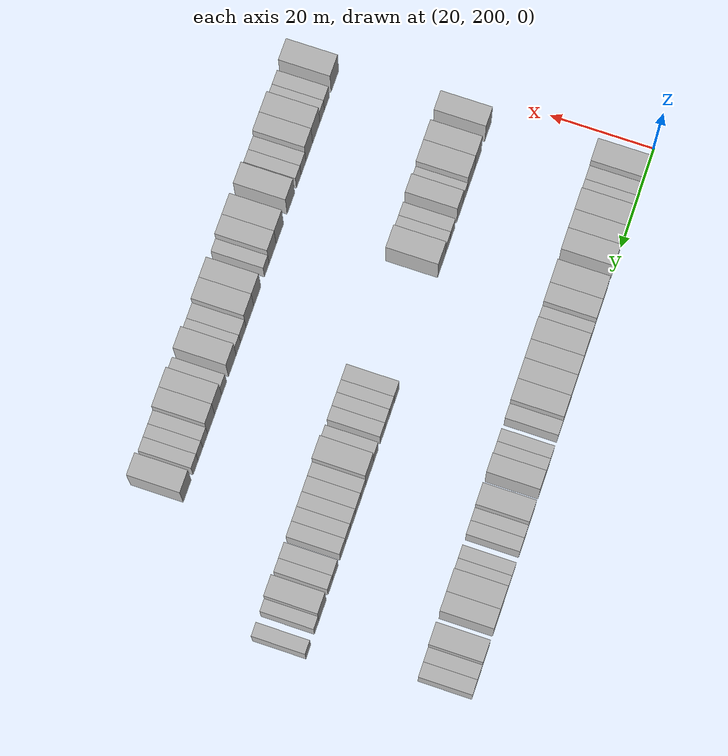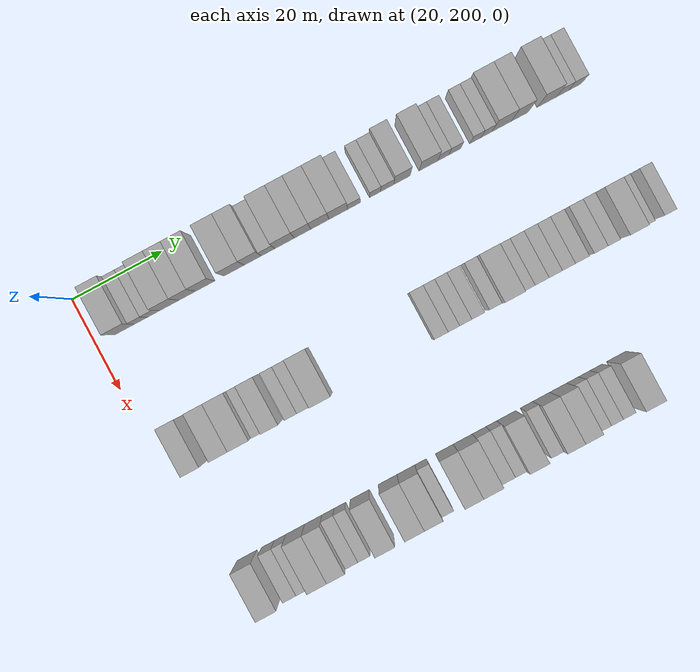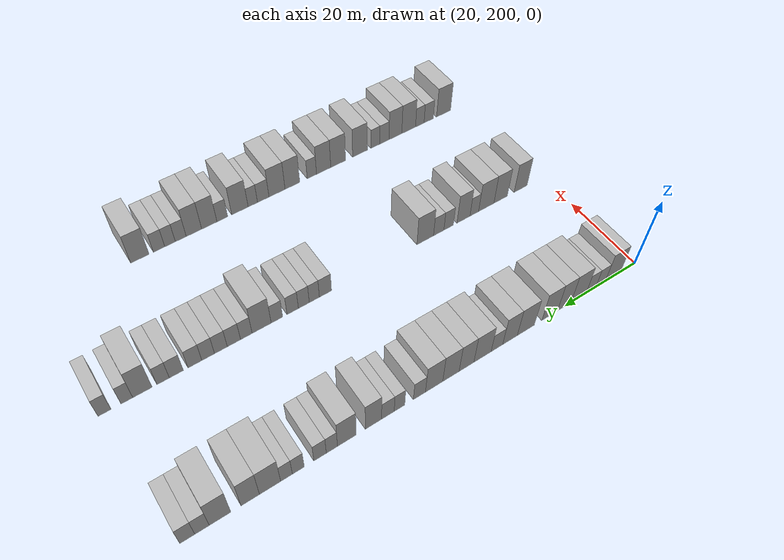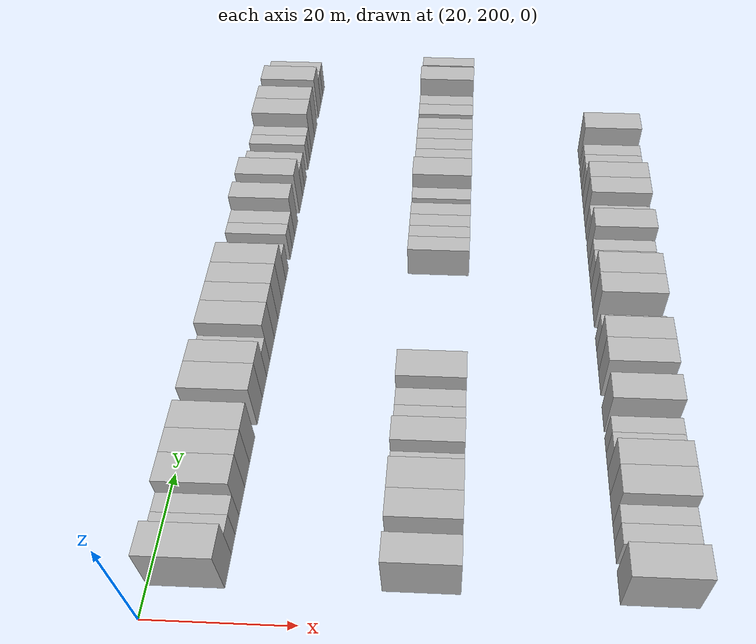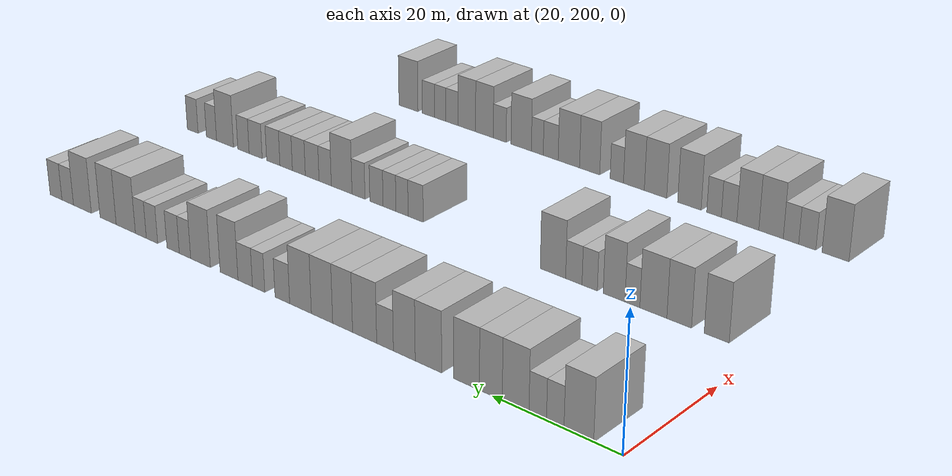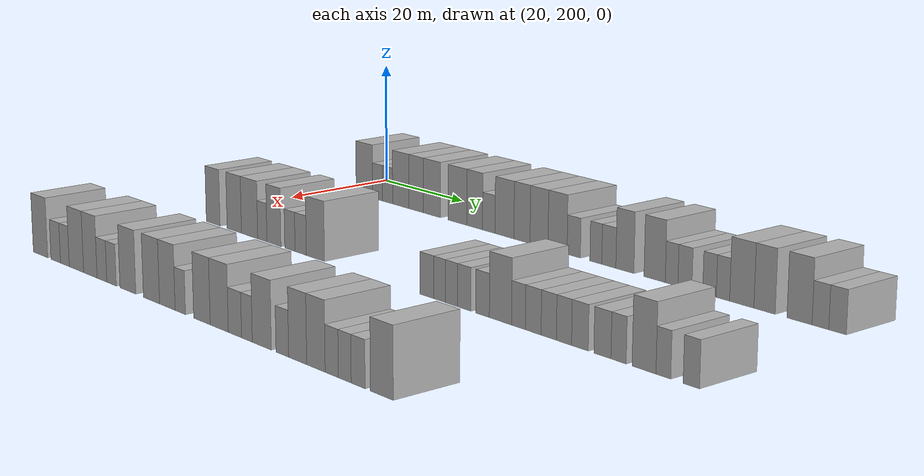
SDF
<sdf version="1.6">
 <world name="default">
  <model name="building_169">
   <static>1</static>
   <pose>25.0000 206.5471 0 0.000000 0.000000 0.000000</pose>
   <link name="link">
    <pose>0 0 4.50 0 0 0</pose>
    <collision name="collision"><geometry><box><size>10.0000 4.4687 9.0000</size></box></geometry></collision>
    <visual name="visual">
     <cast_shadows>0</cast_shadows>
     <geometry><box><size>10.0000 4.4687 9.0000</size></box></geometry>
     <material>
      <script>
       <uri>model://HANNAS_wall/materials/scripts</uri>
       <uri>model://HANNAS_wall/materials/textures</uri>
       <name>vrc/HANNAS_wall</name>
      </script>
     </material>
    </visual>
   </link>
  </model>
  <model name="building_170">
   <static>1</static>
   <pose>25.0000 210.1211 0 0.000000 0.000000 0.000000</pose>
   <link name="link">
    <pose>0 0 3.00 0 0 0</pose>
    <collision name="collision"><geometry><box><size>10.0000 2.6792 6.0000</size></box></geometry></collision>
    <visual name="visual">
     <cast_shadows>0</cast_shadows>
     <geometry><box><size>10.0000 2.6792 6.0000</size></box></geometry>
     <material>
      <script>
       <uri>model://HANNAS_wall/materials/scripts</uri>
       <uri>model://HANNAS_wall/materials/textures</uri>
       <name>vrc/HANNAS_wall</name>
      </script>
     </material>
    </visual>
   </link>
  </model>
  <model name="building_171">
   <static>1</static>
   <pose>25.0000 212.8193 0 0.000000 0.000000 0.000000</pose>
   <link name="link">
    <pose>0 0 3.00 0 0 0</pose>
    <collision name="collision"><geometry><box><size>10.0000 2.7171 6.0000</size></box></geometry></collision>
    <visual name="visual">
     <cast_shadows>0</cast_shadows>
     <geometry><box><size>10.0000 2.7171 6.0000</size></box></geometry>
     <material>
      <script>
       <uri>model://HANNAS_wall/materials/scripts</uri>
       <uri>model://HANNAS_wall/materials/textures</uri>
       <name>vrc/HANNAS_wall</name>
      </script>
     </material>
    </visual>
   </link>
  </model>
  <model name="building_172">
   <static>1</static>
   <pose>25.0000 216.2912 0 0.000000 0.000000 0.000000</pose>
   <link name="link">
    <pose>0 0 4.50 0 0 0</pose>
    <collision name="collision"><geometry><box><size>10.0000 4.2267 9.0000</size></box></geometry></collision>
    <visual name="visual">
     <cast_shadows>0</cast_shadows>
     <geometry><box><size>10.0000 4.2267 9.0000</size></box></geometry>
     <material>
      <script>
       <uri>model://HANNAS_wall/materials/scripts</uri>
       <uri>model://HANNAS_wall/materials/textures</uri>
       <name>vrc/HANNAS_wall</name>
      </script>
     </material>
    </visual>
   </link>
  </model>
  <model name="building_173">
   <static>1</static>
   <pose>25.0000 220.2490 0 0.000000 0.000000 0.000000</pose>
   <link name="link">
    <pose>0 0 4.50 0 0 0</pose>
    <collision name="collision"><geometry><box><size>10.0000 3.6890 9.0000</size></box></geometry></collision>
    <visual name="visual">
     <cast_shadows>0</cast_shadows>
     <geometry><box><size>10.0000 3.6890 9.0000</size></box></geometry>
     <material>
      <script>
       <uri>model://HANNAS_wall/materials/scripts</uri>
       <uri>model://HANNAS_wall/materials/textures</uri>
       <name>vrc/HANNAS_wall</name>
      </script>
     </material>
    </visual>
   </link>
  </model>
  <model name="building_174">
   <static>1</static>
   <pose>25.0000 224.2156 0 0.000000 0.000000 0.000000</pose>
   <link name="link">
    <pose>0 0 4.50 0 0 0</pose>
    <collision name="collision"><geometry><box><size>10.0000 4.2442 9.0000</size></box></geometry></collision>
    <visual name="visual">
     <cast_shadows>0</cast_shadows>
     <geometry><box><size>10.0000 4.2442 9.0000</size></box></geometry>
     <material>
      <script>
       <uri>model://HANNAS_wall/materials/scripts</uri>
       <uri>model://HANNAS_wall/materials/textures</uri>
       <name>vrc/HANNAS_wall</name>
      </script>
     </material>
    </visual>
   </link>
  </model>
  <model name="building_175">
   <static>1</static>
   <pose>25.0000 230.5868 0 0.000000 0.000000 0.000000</pose>
   <link name="link">
    <pose>0 0 4.50 0 0 0</pose>
    <collision name="collision"><geometry><box><size>10.0000 4.4983 9.0000</size></box></geometry></collision>
    <visual name="visual">
     <cast_shadows>0</cast_shadows>
     <geometry><box><size>10.0000 4.4983 9.0000</size></box></geometry>
     <material>
      <script>
       <uri>model://HANNAS_wall/materials/scripts</uri>
       <uri>model://HANNAS_wall/materials/textures</uri>
       <name>vrc/HANNAS_wall</name>
      </script>
     </material>
    </visual>
   </link>
  </model>
  <model name="building_176">
   <static>1</static>
   <pose>25.0000 234.7298 0 0.000000 0.000000 0.000000</pose>
   <link name="link">
    <pose>0 0 4.50 0 0 0</pose>
    <collision name="collision"><geometry><box><size>10.0000 3.7878 9.0000</size></box></geometry></collision>
    <visual name="visual">
     <cast_shadows>0</cast_shadows>
     <geometry><box><size>10.0000 3.7878 9.0000</size></box></geometry>
     <material>
      <script>
       <uri>model://HANNAS_wall/materials/scripts</uri>
       <uri>model://HANNAS_wall/materials/textures</uri>
       <name>vrc/HANNAS_wall</name>
      </script>
     </material>
    </visual>
   </link>
  </model>
  <model name="building_177">
   <static>1</static>
   <pose>25.0000 238.0966 0 0.000000 0.000000 0.000000</pose>
   <link name="link">
    <pose>0 0 3.00 0 0 0</pose>
    <collision name="collision"><geometry><box><size>10.0000 2.9459 6.0000</size></box></geometry></collision>
    <visual name="visual">
     <cast_shadows>0</cast_shadows>
     <geometry><box><size>10.0000 2.9459 6.0000</size></box></geometry>
     <material>
      <script>
       <uri>model://HANNAS_wall/materials/scripts</uri>
       <uri>model://HANNAS_wall/materials/textures</uri>
       <name>vrc/HANNAS_wall</name>
      </script>
     </material>
    </visual>
   </link>
  </model>
  <model name="building_178">
   <static>1</static>
   <pose>25.0000 241.7360 0 0.000000 0.000000 0.000000</pose>
   <link name="link">
    <pose>0 0 4.50 0 0 0</pose>
    <collision name="collision"><geometry><box><size>10.0000 4.3329 9.0000</size></box></geometry></collision>
    <visual name="visual">
     <cast_shadows>0</cast_shadows>
     <geometry><box><size>10.0000 4.3329 9.0000</size></box></geometry>
     <material>
      <script>
       <uri>model://HANNAS_wall/materials/scripts</uri>
       <uri>model://HANNAS_wall/materials/textures</uri>
       <name>vrc/HANNAS_wall</name>
      </script>
     </material>
    </visual>
   </link>
  </model>
  <model name="building_179">
   <static>1</static>
   <pose>25.0000 245.7249 0 0.000000 0.000000 0.000000</pose>
   <link name="link">
    <pose>0 0 4.50 0 0 0</pose>
    <collision name="collision"><geometry><box><size>10.0000 3.6449 9.0000</size></box></geometry></collision>
    <visual name="visual">
     <cast_shadows>0</cast_shadows>
     <geometry><box><size>10.0000 3.6449 9.0000</size></box></geometry>
     <material>
      <script>
       <uri>model://HANNAS_wall/materials/scripts</uri>
       <uri>model://HANNAS_wall/materials/textures</uri>
       <name>vrc/HANNAS_wall</name>
      </script>
     </material>
    </visual>
   </link>
  </model>
  <model name="building_180">
   <static>1</static>
   <pose>25.0000 249.5362 0 0.000000 0.000000 0.000000</pose>
   <link name="link">
    <pose>0 0 4.50 0 0 0</pose>
    <collision name="collision"><geometry><box><size>10.0000 3.9777 9.0000</size></box></geometry></collision>
    <visual name="visual">
     <cast_shadows>0</cast_shadows>
     <geometry><box><size>10.0000 3.9777 9.0000</size></box></geometry>
     <material>
      <script>
       <uri>model://HANNAS_wall/materials/scripts</uri>
       <uri>model://HANNAS_wall/materials/textures</uri>
       <name>vrc/HANNAS_wall</name>
      </script>
     </material>
    </visual>
   </link>
  </model>
  <model name="building_181">
   <static>1</static>
   <pose>25.0000 253.5884 0 0.000000 0.000000 0.000000</pose>
   <link name="link">
    <pose>0 0 4.50 0 0 0</pose>
    <collision name="collision"><geometry><box><size>10.0000 4.1267 9.0000</size></box></geometry></collision>
    <visual name="visual">
     <cast_shadows>0</cast_shadows>
     <geometry><box><size>10.0000 4.1267 9.0000</size></box></geometry>
     <material>
      <script>
       <uri>model://HANNAS_wall/materials/scripts</uri>
       <uri>model://HANNAS_wall/materials/textures</uri>
       <name>vrc/HANNAS_wall</name>
      </script>
     </material>
    </visual>
   </link>
  </model>
  <model name="building_182">
   <static>1</static>
   <pose>25.0000 257.0678 0 0.000000 0.000000 0.000000</pose>
   <link name="link">
    <pose>0 0 3.00 0 0 0</pose>
    <collision name="collision"><geometry><box><size>10.0000 2.8320 6.0000</size></box></geometry></collision>
    <visual name="visual">
     <cast_shadows>0</cast_shadows>
     <geometry><box><size>10.0000 2.8320 6.0000</size></box></geometry>
     <material>
      <script>
       <uri>model://HANNAS_wall/materials/scripts</uri>
       <uri>model://HANNAS_wall/materials/textures</uri>
       <name>vrc/HANNAS_wall</name>
      </script>
     </material>
    </visual>
   </link>
  </model>
  <model name="building_183">
   <static>1</static>
   <pose>25.0000 261.7066 0 0.000000 0.000000 0.000000</pose>
   <link name="link">
    <pose>0 0 3.00 0 0 0</pose>
    <collision name="collision"><geometry><box><size>10.0000 2.4457 6.0000</size></box></geometry></collision>
    <visual name="visual">
     <cast_shadows>0</cast_shadows>
     <geometry><box><size>10.0000 2.4457 6.0000</size></box></geometry>
     <material>
      <script>
       <uri>model://HANNAS_wall/materials/scripts</uri>
       <uri>model://HANNAS_wall/materials/textures</uri>
       <name>vrc/HANNAS_wall</name>
      </script>
     </material>
    </visual>
   </link>
  </model>
  <model name="building_184">
   <static>1</static>
   <pose>25.0000 264.3765 0 0.000000 0.000000 0.000000</pose>
   <link name="link">
    <pose>0 0 3.00 0 0 0</pose>
    <collision name="collision"><geometry><box><size>10.0000 2.8942 6.0000</size></box></geometry></collision>
    <visual name="visual">
     <cast_shadows>0</cast_shadows>
     <geometry><box><size>10.0000 2.8942 6.0000</size></box></geometry>
     <material>
      <script>
       <uri>model://HANNAS_wall/materials/scripts</uri>
       <uri>model://HANNAS_wall/materials/textures</uri>
       <name>vrc/HANNAS_wall</name>
      </script>
     </material>
    </visual>
   </link>
  </model>
  <model name="building_185">
   <static>1</static>
   <pose>25.0000 267.6362 0 0.000000 0.000000 0.000000</pose>
   <link name="link">
    <pose>0 0 4.50 0 0 0</pose>
    <collision name="collision"><geometry><box><size>10.0000 3.6252 9.0000</size></box></geometry></collision>
    <visual name="visual">
     <cast_shadows>0</cast_shadows>
     <geometry><box><size>10.0000 3.6252 9.0000</size></box></geometry>
     <material>
      <script>
       <uri>model://HANNAS_wall/materials/scripts</uri>
       <uri>model://HANNAS_wall/materials/textures</uri>
       <name>vrc/HANNAS_wall</name>
      </script>
     </material>
    </visual>
   </link>
  </model>
  <model name="building_186">
   <static>1</static>
   <pose>25.0000 273.5083 0 0.000000 0.000000 0.000000</pose>
   <link name="link">
    <pose>0 0 4.50 0 0 0</pose>
    <collision name="collision"><geometry><box><size>10.0000 4.1190 9.0000</size></box></geometry></collision>
    <visual name="visual">
     <cast_shadows>0</cast_shadows>
     <geometry><box><size>10.0000 4.1190 9.0000</size></box></geometry>
     <material>
      <script>
       <uri>model://HANNAS_wall/materials/scripts</uri>
       <uri>model://HANNAS_wall/materials/textures</uri>
       <name>vrc/HANNAS_wall</name>
      </script>
     </material>
    </visual>
   </link>
  </model>
  <model name="building_187">
   <static>1</static>
   <pose>25.0000 276.7757 0 0.000000 0.000000 0.000000</pose>
   <link name="link">
    <pose>0 0 3.00 0 0 0</pose>
    <collision name="collision"><geometry><box><size>10.0000 2.4158 6.0000</size></box></geometry></collision>
    <visual name="visual">
     <cast_shadows>0</cast_shadows>
     <geometry><box><size>10.0000 2.4158 6.0000</size></box></geometry>
     <material>
      <script>
       <uri>model://HANNAS_wall/materials/scripts</uri>
       <uri>model://HANNAS_wall/materials/textures</uri>
       <name>vrc/HANNAS_wall</name>
      </script>
     </material>
    </visual>
   </link>
  </model>
  <model name="building_188">
   <static>1</static>
   <pose>25.0000 279.3054 0 0.000000 0.000000 0.000000</pose>
   <link name="link">
    <pose>0 0 3.00 0 0 0</pose>
    <collision name="collision"><geometry><box><size>10.0000 2.6436 6.0000</size></box></geometry></collision>
    <visual name="visual">
     <cast_shadows>0</cast_shadows>
     <geometry><box><size>10.0000 2.6436 6.0000</size></box></geometry>
     <material>
      <script>
       <uri>model://HANNAS_wall/materials/scripts</uri>
       <uri>model://HANNAS_wall/materials/textures</uri>
       <name>vrc/HANNAS_wall</name>
      </script>
     </material>
    </visual>
   </link>
  </model>
  <model name="building_189">
   <static>1</static>
   <pose>25.0000 283.8724 0 0.000000 0.000000 0.000000</pose>
   <link name="link">
    <pose>0 0 3.00 0 0 0</pose>
    <collision name="collision"><geometry><box><size>10.0000 2.4904 6.0000</size></box></geometry></collision>
    <visual name="visual">
     <cast_shadows>0</cast_shadows>
     <geometry><box><size>10.0000 2.4904 6.0000</size></box></geometry>
     <material>
      <script>
       <uri>model://HANNAS_wall/materials/scripts</uri>
       <uri>model://HANNAS_wall/materials/textures</uri>
       <name>vrc/HANNAS_wall</name>
      </script>
     </material>
    </visual>
   </link>
  </model>
  <model name="building_190">
   <static>1</static>
   <pose>25.0000 286.3260 0 0.000000 0.000000 0.000000</pose>
   <link name="link">
    <pose>0 0 3.00 0 0 0</pose>
    <collision name="collision"><geometry><box><size>10.0000 2.4168 6.0000</size></box></geometry></collision>
    <visual name="visual">
     <cast_shadows>0</cast_shadows>
     <geometry><box><size>10.0000 2.4168 6.0000</size></box></geometry>
     <material>
      <script>
       <uri>model://HANNAS_wall/materials/scripts</uri>
       <uri>model://HANNAS_wall/materials/textures</uri>
       <name>vrc/HANNAS_wall</name>
      </script>
     </material>
    </visual>
   </link>
  </model>
  <model name="building_191">
   <static>1</static>
   <pose>25.0000 289.6887 0 0.000000 0.000000 0.000000</pose>
   <link name="link">
    <pose>0 0 4.50 0 0 0</pose>
    <collision name="collision"><geometry><box><size>10.0000 4.3086 9.0000</size></box></geometry></collision>
    <visual name="visual">
     <cast_shadows>0</cast_shadows>
     <geometry><box><size>10.0000 4.3086 9.0000</size></box></geometry>
     <material>
      <script>
       <uri>model://HANNAS_wall/materials/scripts</uri>
       <uri>model://HANNAS_wall/materials/textures</uri>
       <name>vrc/HANNAS_wall</name>
      </script>
     </material>
    </visual>
   </link>
  </model>
  <model name="building_192">
   <static>1</static>
   <pose>25.0000 293.6842 0 0.000000 0.000000 0.000000</pose>
   <link name="link">
    <pose>0 0 4.50 0 0 0</pose>
    <collision name="collision"><geometry><box><size>10.0000 3.6823 9.0000</size></box></geometry></collision>
    <visual name="visual">
     <cast_shadows>0</cast_shadows>
     <geometry><box><size>10.0000 3.6823 9.0000</size></box></geometry>
     <material>
      <script>
       <uri>model://HANNAS_wall/materials/scripts</uri>
       <uri>model://HANNAS_wall/materials/textures</uri>
       <name>vrc/HANNAS_wall</name>
      </script>
     </material>
    </visual>
   </link>
  </model>
  <model name="building_193">
   <static>1</static>
   <pose>25.0000 299.6206 0 0.000000 0.000000 0.000000</pose>
   <link name="link">
    <pose>0 0 4.50 0 0 0</pose>
    <collision name="collision"><geometry><box><size>10.0000 4.1906 9.0000</size></box></geometry></collision>
    <visual name="visual">
     <cast_shadows>0</cast_shadows>
     <geometry><box><size>10.0000 4.1906 9.0000</size></box></geometry>
     <material>
      <script>
       <uri>model://HANNAS_wall/materials/scripts</uri>
       <uri>model://HANNAS_wall/materials/textures</uri>
       <name>vrc/HANNAS_wall</name>
      </script>
     </material>
    </visual>
   </link>
  </model>
  <model name="building_194">
   <static>1</static>
   <pose>25.0000 303.0851 0 0.000000 0.000000 0.000000</pose>
   <link name="link">
    <pose>0 0 3.00 0 0 0</pose>
    <collision name="collision"><geometry><box><size>10.0000 2.7383 6.0000</size></box></geometry></collision>
    <visual name="visual">
     <cast_shadows>0</cast_shadows>
     <geometry><box><size>10.0000 2.7383 6.0000</size></box></geometry>
     <material>
      <script>
       <uri>model://HANNAS_wall/materials/scripts</uri>
       <uri>model://HANNAS_wall/materials/textures</uri>
       <name>vrc/HANNAS_wall</name>
      </script>
     </material>
    </visual>
   </link>
  </model>
  <model name="building_195">
   <static>1</static>
   <pose>25.0000 305.8695 0 0.000000 0.000000 0.000000</pose>
   <link name="link">
    <pose>0 0 3.00 0 0 0</pose>
    <collision name="collision"><geometry><box><size>10.0000 2.8307 6.0000</size></box></geometry></collision>
    <visual name="visual">
     <cast_shadows>0</cast_shadows>
     <geometry><box><size>10.0000 2.8307 6.0000</size></box></geometry>
     <material>
      <script>
       <uri>model://HANNAS_wall/materials/scripts</uri>
       <uri>model://HANNAS_wall/materials/textures</uri>
       <name>vrc/HANNAS_wall</name>
      </script>
     </material>
    </visual>
   </link>
  </model>
  <model name="building_391">
   <static>1</static>
   <pose>55.0000 206.7245 0 0.000000 0.000000 0.000000</pose>
   <link name="link">
    <pose>0 0 4.50 0 0 0</pose>
    <collision name="collision"><geometry><box><size>10.0000 3.8951 9.0000</size></box></geometry></collision>
    <visual name="visual">
     <cast_shadows>0</cast_shadows>
     <geometry><box><size>10.0000 3.8951 9.0000</size></box></geometry>
     <material>
      <script>
       <uri>model://HANNAS_wall/materials/scripts</uri>
       <uri>model://HANNAS_wall/materials/textures</uri>
       <name>vrc/HANNAS_wall</name>
      </script>
     </material>
    </visual>
   </link>
  </model>
  <model name="building_392">
   <static>1</static>
   <pose>55.0000 212.6493 0 0.000000 0.000000 0.000000</pose>
   <link name="link">
    <pose>0 0 4.50 0 0 0</pose>
    <collision name="collision"><geometry><box><size>10.0000 3.9546 9.0000</size></box></geometry></collision>
    <visual name="visual">
     <cast_shadows>0</cast_shadows>
     <geometry><box><size>10.0000 3.9546 9.0000</size></box></geometry>
     <material>
      <script>
       <uri>model://HANNAS_wall/materials/scripts</uri>
       <uri>model://HANNAS_wall/materials/textures</uri>
       <name>vrc/HANNAS_wall</name>
      </script>
     </material>
    </visual>
   </link>
  </model>
  <model name="building_393">
   <static>1</static>
   <pose>55.0000 216.8332 0 0.000000 0.000000 0.000000</pose>
   <link name="link">
    <pose>0 0 4.50 0 0 0</pose>
    <collision name="collision"><geometry><box><size>10.0000 4.4131 9.0000</size></box></geometry></collision>
    <visual name="visual">
     <cast_shadows>0</cast_shadows>
     <geometry><box><size>10.0000 4.4131 9.0000</size></box></geometry>
     <material>
      <script>
       <uri>model://HANNAS_wall/materials/scripts</uri>
       <uri>model://HANNAS_wall/materials/textures</uri>
       <name>vrc/HANNAS_wall</name>
      </script>
     </material>
    </visual>
   </link>
  </model>
  <model name="building_394">
   <static>1</static>
   <pose>55.0000 220.2704 0 0.000000 0.000000 0.000000</pose>
   <link name="link">
    <pose>0 0 3.00 0 0 0</pose>
    <collision name="collision"><geometry><box><size>10.0000 2.4612 6.0000</size></box></geometry></collision>
    <visual name="visual">
     <cast_shadows>0</cast_shadows>
     <geometry><box><size>10.0000 2.4612 6.0000</size></box></geometry>
     <material>
      <script>
       <uri>model://HANNAS_wall/materials/scripts</uri>
       <uri>model://HANNAS_wall/materials/textures</uri>
       <name>vrc/HANNAS_wall</name>
      </script>
     </material>
    </visual>
   </link>
  </model>
  <model name="building_395">
   <static>1</static>
   <pose>55.0000 223.3398 0 0.000000 0.000000 0.000000</pose>
   <link name="link">
    <pose>0 0 4.50 0 0 0</pose>
    <collision name="collision"><geometry><box><size>10.0000 3.6777 9.0000</size></box></geometry></collision>
    <visual name="visual">
     <cast_shadows>0</cast_shadows>
     <geometry><box><size>10.0000 3.6777 9.0000</size></box></geometry>
     <material>
      <script>
       <uri>model://HANNAS_wall/materials/scripts</uri>
       <uri>model://HANNAS_wall/materials/textures</uri>
       <name>vrc/HANNAS_wall</name>
      </script>
     </material>
    </visual>
   </link>
  </model>
  <model name="building_396">
   <static>1</static>
   <pose>55.0000 227.4953 0 0.000000 0.000000 0.000000</pose>
   <link name="link">
    <pose>0 0 3.00 0 0 0</pose>
    <collision name="collision"><geometry><box><size>10.0000 2.6333 6.0000</size></box></geometry></collision>
    <visual name="visual">
     <cast_shadows>0</cast_shadows>
     <geometry><box><size>10.0000 2.6333 6.0000</size></box></geometry>
     <material>
      <script>
       <uri>model://HANNAS_wall/materials/scripts</uri>
       <uri>model://HANNAS_wall/materials/textures</uri>
       <name>vrc/HANNAS_wall</name>
      </script>
     </material>
    </visual>
   </link>
  </model>
  <model name="building_397">
   <static>1</static>
   <pose>55.0000 230.2359 0 0.000000 0.000000 0.000000</pose>
   <link name="link">
    <pose>0 0 3.00 0 0 0</pose>
    <collision name="collision"><geometry><box><size>10.0000 2.8478 6.0000</size></box></geometry></collision>
    <visual name="visual">
     <cast_shadows>0</cast_shadows>
     <geometry><box><size>10.0000 2.8478 6.0000</size></box></geometry>
     <material>
      <script>
       <uri>model://HANNAS_wall/materials/scripts</uri>
       <uri>model://HANNAS_wall/materials/textures</uri>
       <name>vrc/HANNAS_wall</name>
      </script>
     </material>
    </visual>
   </link>
  </model>
  <model name="building_398">
   <static>1</static>
   <pose>55.0000 233.9056 0 0.000000 0.000000 0.000000</pose>
   <link name="link">
    <pose>0 0 4.50 0 0 0</pose>
    <collision name="collision"><geometry><box><size>10.0000 4.4918 9.0000</size></box></geometry></collision>
    <visual name="visual">
     <cast_shadows>0</cast_shadows>
     <geometry><box><size>10.0000 4.4918 9.0000</size></box></geometry>
     <material>
      <script>
       <uri>model://HANNAS_wall/materials/scripts</uri>
       <uri>model://HANNAS_wall/materials/textures</uri>
       <name>vrc/HANNAS_wall</name>
      </script>
     </material>
    </visual>
   </link>
  </model>
  <model name="building_399">
   <static>1</static>
   <pose>55.0000 259.6286 0 0.000000 0.000000 0.000000</pose>
   <link name="link">
    <pose>0 0 3.00 0 0 0</pose>
    <collision name="collision"><geometry><box><size>10.0000 2.9847 6.0000</size></box></geometry></collision>
    <visual name="visual">
     <cast_shadows>0</cast_shadows>
     <geometry><box><size>10.0000 2.9847 6.0000</size></box></geometry>
     <material>
      <script>
       <uri>model://HANNAS_wall/materials/scripts</uri>
       <uri>model://HANNAS_wall/materials/textures</uri>
       <name>vrc/HANNAS_wall</name>
      </script>
     </material>
    </visual>
   </link>
  </model>
  <model name="building_400">
   <static>1</static>
   <pose>55.0000 262.3425 0 0.000000 0.000000 0.000000</pose>
   <link name="link">
    <pose>0 0 3.00 0 0 0</pose>
    <collision name="collision"><geometry><box><size>10.0000 2.4432 6.0000</size></box></geometry></collision>
    <visual name="visual">
     <cast_shadows>0</cast_shadows>
     <geometry><box><size>10.0000 2.4432 6.0000</size></box></geometry>
     <material>
      <script>
       <uri>model://HANNAS_wall/materials/scripts</uri>
       <uri>model://HANNAS_wall/materials/textures</uri>
       <name>vrc/HANNAS_wall</name>
      </script>
     </material>
    </visual>
   </link>
  </model>
  <model name="building_401">
   <static>1</static>
   <pose>55.0000 264.8702 0 0.000000 0.000000 0.000000</pose>
   <link name="link">
    <pose>0 0 3.00 0 0 0</pose>
    <collision name="collision"><geometry><box><size>10.0000 2.6122 6.0000</size></box></geometry></collision>
    <visual name="visual">
     <cast_shadows>0</cast_shadows>
     <geometry><box><size>10.0000 2.6122 6.0000</size></box></geometry>
     <material>
      <script>
       <uri>model://HANNAS_wall/materials/scripts</uri>
       <uri>model://HANNAS_wall/materials/textures</uri>
       <name>vrc/HANNAS_wall</name>
      </script>
     </material>
    </visual>
   </link>
  </model>
  <model name="building_402">
   <static>1</static>
   <pose>55.0000 267.5347 0 0.000000 0.000000 0.000000</pose>
   <link name="link">
    <pose>0 0 3.00 0 0 0</pose>
    <collision name="collision"><geometry><box><size>10.0000 2.7168 6.0000</size></box></geometry></collision>
    <visual name="visual">
     <cast_shadows>0</cast_shadows>
     <geometry><box><size>10.0000 2.7168 6.0000</size></box></geometry>
     <material>
      <script>
       <uri>model://HANNAS_wall/materials/scripts</uri>
       <uri>model://HANNAS_wall/materials/textures</uri>
       <name>vrc/HANNAS_wall</name>
      </script>
     </material>
    </visual>
   </link>
  </model>
  <model name="building_403">
   <static>1</static>
   <pose>55.0000 271.2460 0 0.000000 0.000000 0.000000</pose>
   <link name="link">
    <pose>0 0 3.00 0 0 0</pose>
    <collision name="collision"><geometry><box><size>10.0000 2.7058 6.0000</size></box></geometry></collision>
    <visual name="visual">
     <cast_shadows>0</cast_shadows>
     <geometry><box><size>10.0000 2.7058 6.0000</size></box></geometry>
     <material>
      <script>
       <uri>model://HANNAS_wall/materials/scripts</uri>
       <uri>model://HANNAS_wall/materials/textures</uri>
       <name>vrc/HANNAS_wall</name>
      </script>
     </material>
    </visual>
   </link>
  </model>
  <model name="building_404">
   <static>1</static>
   <pose>55.0000 274.7921 0 0.000000 0.000000 0.000000</pose>
   <link name="link">
    <pose>0 0 4.50 0 0 0</pose>
    <collision name="collision"><geometry><box><size>10.0000 4.3863 9.0000</size></box></geometry></collision>
    <visual name="visual">
     <cast_shadows>0</cast_shadows>
     <geometry><box><size>10.0000 4.3863 9.0000</size></box></geometry>
     <material>
      <script>
       <uri>model://HANNAS_wall/materials/scripts</uri>
       <uri>model://HANNAS_wall/materials/textures</uri>
       <name>vrc/HANNAS_wall</name>
      </script>
     </material>
    </visual>
   </link>
  </model>
  <model name="building_405">
   <static>1</static>
   <pose>55.0000 278.3083 0 0.000000 0.000000 0.000000</pose>
   <link name="link">
    <pose>0 0 3.00 0 0 0</pose>
    <collision name="collision"><geometry><box><size>10.0000 2.6461 6.0000</size></box></geometry></collision>
    <visual name="visual">
     <cast_shadows>0</cast_shadows>
     <geometry><box><size>10.0000 2.6461 6.0000</size></box></geometry>
     <material>
      <script>
       <uri>model://HANNAS_wall/materials/scripts</uri>
       <uri>model://HANNAS_wall/materials/textures</uri>
       <name>vrc/HANNAS_wall</name>
      </script>
     </material>
    </visual>
   </link>
  </model>
  <model name="building_406">
   <static>1</static>
   <pose>55.0000 281.1202 0 0.000000 0.000000 0.000000</pose>
   <link name="link">
    <pose>0 0 3.00 0 0 0</pose>
    <collision name="collision"><geometry><box><size>10.0000 2.9778 6.0000</size></box></geometry></collision>
    <visual name="visual">
     <cast_shadows>0</cast_shadows>
     <geometry><box><size>10.0000 2.9778 6.0000</size></box></geometry>
     <material>
      <script>
       <uri>model://HANNAS_wall/materials/scripts</uri>
       <uri>model://HANNAS_wall/materials/textures</uri>
       <name>vrc/HANNAS_wall</name>
      </script>
     </material>
    </visual>
   </link>
  </model>
  <model name="building_407">
   <static>1</static>
   <pose>55.0000 284.0295 0 0.000000 0.000000 0.000000</pose>
   <link name="link">
    <pose>0 0 3.00 0 0 0</pose>
    <collision name="collision"><geometry><box><size>10.0000 2.8406 6.0000</size></box></geometry></collision>
    <visual name="visual">
     <cast_shadows>0</cast_shadows>
     <geometry><box><size>10.0000 2.8406 6.0000</size></box></geometry>
     <material>
      <script>
       <uri>model://HANNAS_wall/materials/scripts</uri>
       <uri>model://HANNAS_wall/materials/textures</uri>
       <name>vrc/HANNAS_wall</name>
      </script>
     </material>
    </visual>
   </link>
  </model>
  <model name="building_408">
   <static>1</static>
   <pose>55.0000 286.8389 0 0.000000 0.000000 0.000000</pose>
   <link name="link">
    <pose>0 0 3.00 0 0 0</pose>
    <collision name="collision"><geometry><box><size>10.0000 2.7783 6.0000</size></box></geometry></collision>
    <visual name="visual">
     <cast_shadows>0</cast_shadows>
     <geometry><box><size>10.0000 2.7783 6.0000</size></box></geometry>
     <material>
      <script>
       <uri>model://HANNAS_wall/materials/scripts</uri>
       <uri>model://HANNAS_wall/materials/textures</uri>
       <name>vrc/HANNAS_wall</name>
      </script>
     </material>
    </visual>
   </link>
  </model>
  <model name="building_409">
   <static>1</static>
   <pose>55.0000 289.7231 0 0.000000 0.000000 0.000000</pose>
   <link name="link">
    <pose>0 0 3.00 0 0 0</pose>
    <collision name="collision"><geometry><box><size>10.0000 2.9900 6.0000</size></box></geometry></collision>
    <visual name="visual">
     <cast_shadows>0</cast_shadows>
     <geometry><box><size>10.0000 2.9900 6.0000</size></box></geometry>
     <material>
      <script>
       <uri>model://HANNAS_wall/materials/scripts</uri>
       <uri>model://HANNAS_wall/materials/textures</uri>
       <name>vrc/HANNAS_wall</name>
      </script>
     </material>
    </visual>
   </link>
  </model>
  <model name="building_410">
   <static>1</static>
   <pose>55.0000 293.7135 0 0.000000 0.000000 0.000000</pose>
   <link name="link">
    <pose>0 0 3.00 0 0 0</pose>
    <collision name="collision"><geometry><box><size>10.0000 2.9909 6.0000</size></box></geometry></collision>
    <visual name="visual">
     <cast_shadows>0</cast_shadows>
     <geometry><box><size>10.0000 2.9909 6.0000</size></box></geometry>
     <material>
      <script>
       <uri>model://HANNAS_wall/materials/scripts</uri>
       <uri>model://HANNAS_wall/materials/textures</uri>
       <name>vrc/HANNAS_wall</name>
      </script>
     </material>
    </visual>
   </link>
  </model>
  <model name="building_411">
   <static>1</static>
   <pose>55.0000 296.5179 0 0.000000 0.000000 0.000000</pose>
   <link name="link">
    <pose>0 0 3.00 0 0 0</pose>
    <collision name="collision"><geometry><box><size>10.0000 2.6178 6.0000</size></box></geometry></collision>
    <visual name="visual">
     <cast_shadows>0</cast_shadows>
     <geometry><box><size>10.0000 2.6178 6.0000</size></box></geometry>
     <material>
      <script>
       <uri>model://HANNAS_wall/materials/scripts</uri>
       <uri>model://HANNAS_wall/materials/textures</uri>
       <name>vrc/HANNAS_wall</name>
      </script>
     </material>
    </visual>
   </link>
  </model>
  <model name="building_412">
   <static>1</static>
   <pose>55.0000 300.8249 0 0.000000 0.000000 0.000000</pose>
   <link name="link">
    <pose>0 0 4.50 0 0 0</pose>
    <collision name="collision"><geometry><box><size>10.0000 3.9963 9.0000</size></box></geometry></collision>
    <visual name="visual">
     <cast_shadows>0</cast_shadows>
     <geometry><box><size>10.0000 3.9963 9.0000</size></box></geometry>
     <material>
      <script>
       <uri>model://HANNAS_wall/materials/scripts</uri>
       <uri>model://HANNAS_wall/materials/textures</uri>
       <name>vrc/HANNAS_wall</name>
      </script>
     </material>
    </visual>
   </link>
  </model>
  <model name="building_413">
   <static>1</static>
   <pose>55.0000 304.0290 0 0.000000 0.000000 0.000000</pose>
   <link name="link">
    <pose>0 0 3.00 0 0 0</pose>
    <collision name="collision"><geometry><box><size>10.0000 2.4119 6.0000</size></box></geometry></collision>
    <visual name="visual">
     <cast_shadows>0</cast_shadows>
     <geometry><box><size>10.0000 2.4119 6.0000</size></box></geometry>
     <material>
      <script>
       <uri>model://HANNAS_wall/materials/scripts</uri>
       <uri>model://HANNAS_wall/materials/textures</uri>
       <name>vrc/HANNAS_wall</name>
      </script>
     </material>
    </visual>
   </link>
  </model>
  <model name="building_414">
   <static>1</static>
   <pose>55.0000 308.5379 0 0.000000 0.000000 0.000000</pose>
   <link name="link">
    <pose>0 0 3.00 0 0 0</pose>
    <collision name="collision"><geometry><box><size>10.0000 2.6060 6.0000</size></box></geometry></collision>
    <visual name="visual">
     <cast_shadows>0</cast_shadows>
     <geometry><box><size>10.0000 2.6060 6.0000</size></box></geometry>
     <material>
      <script>
       <uri>model://HANNAS_wall/materials/scripts</uri>
       <uri>model://HANNAS_wall/materials/textures</uri>
       <name>vrc/HANNAS_wall</name>
      </script>
     </material>
    </visual>
   </link>
  </model>
  <model name="building_610">
   <static>1</static>
   <pose>85.0000 206.4689 0 0.000000 0.000000 0.000000</pose>
   <link name="link">
    <pose>0 0 4.50 0 0 0</pose>
    <collision name="collision"><geometry><box><size>10.0000 4.3605 9.0000</size></box></geometry></collision>
    <visual name="visual">
     <cast_shadows>0</cast_shadows>
     <geometry><box><size>10.0000 4.3605 9.0000</size></box></geometry>
     <material>
      <script>
       <uri>model://HANNAS_wall/materials/scripts</uri>
       <uri>model://HANNAS_wall/materials/textures</uri>
       <name>vrc/HANNAS_wall</name>
      </script>
     </material>
    </visual>
   </link>
  </model>
  <model name="building_611">
   <static>1</static>
   <pose>85.0000 211.0675 0 0.000000 0.000000 0.000000</pose>
   <link name="link">
    <pose>0 0 3.00 0 0 0</pose>
    <collision name="collision"><geometry><box><size>10.0000 2.8367 6.0000</size></box></geometry></collision>
    <visual name="visual">
     <cast_shadows>0</cast_shadows>
     <geometry><box><size>10.0000 2.8367 6.0000</size></box></geometry>
     <material>
      <script>
       <uri>model://HANNAS_wall/materials/scripts</uri>
       <uri>model://HANNAS_wall/materials/textures</uri>
       <name>vrc/HANNAS_wall</name>
      </script>
     </material>
    </visual>
   </link>
  </model>
  <model name="building_612">
   <static>1</static>
   <pose>85.0000 213.7748 0 0.000000 0.000000 0.000000</pose>
   <link name="link">
    <pose>0 0 3.00 0 0 0</pose>
    <collision name="collision"><geometry><box><size>10.0000 2.5780 6.0000</size></box></geometry></collision>
    <visual name="visual">
     <cast_shadows>0</cast_shadows>
     <geometry><box><size>10.0000 2.5780 6.0000</size></box></geometry>
     <material>
      <script>
       <uri>model://HANNAS_wall/materials/scripts</uri>
       <uri>model://HANNAS_wall/materials/textures</uri>
       <name>vrc/HANNAS_wall</name>
      </script>
     </material>
    </visual>
   </link>
  </model>
  <model name="building_613">
   <static>1</static>
   <pose>85.0000 217.1329 0 0.000000 0.000000 0.000000</pose>
   <link name="link">
    <pose>0 0 4.50 0 0 0</pose>
    <collision name="collision"><geometry><box><size>10.0000 4.1382 9.0000</size></box></geometry></collision>
    <visual name="visual">
     <cast_shadows>0</cast_shadows>
     <geometry><box><size>10.0000 4.1382 9.0000</size></box></geometry>
     <material>
      <script>
       <uri>model://HANNAS_wall/materials/scripts</uri>
       <uri>model://HANNAS_wall/materials/textures</uri>
       <name>vrc/HANNAS_wall</name>
      </script>
     </material>
    </visual>
   </link>
  </model>
  <model name="building_614">
   <static>1</static>
   <pose>85.0000 221.0990 0 0.000000 0.000000 0.000000</pose>
   <link name="link">
    <pose>0 0 4.50 0 0 0</pose>
    <collision name="collision"><geometry><box><size>10.0000 3.7940 9.0000</size></box></geometry></collision>
    <visual name="visual">
     <cast_shadows>0</cast_shadows>
     <geometry><box><size>10.0000 3.7940 9.0000</size></box></geometry>
     <material>
      <script>
       <uri>model://HANNAS_wall/materials/scripts</uri>
       <uri>model://HANNAS_wall/materials/textures</uri>
       <name>vrc/HANNAS_wall</name>
      </script>
     </material>
    </visual>
   </link>
  </model>
  <model name="building_615">
   <static>1</static>
   <pose>85.0000 224.3491 0 0.000000 0.000000 0.000000</pose>
   <link name="link">
    <pose>0 0 3.00 0 0 0</pose>
    <collision name="collision"><geometry><box><size>10.0000 2.7060 6.0000</size></box></geometry></collision>
    <visual name="visual">
     <cast_shadows>0</cast_shadows>
     <geometry><box><size>10.0000 2.7060 6.0000</size></box></geometry>
     <material>
      <script>
       <uri>model://HANNAS_wall/materials/scripts</uri>
       <uri>model://HANNAS_wall/materials/textures</uri>
       <name>vrc/HANNAS_wall</name>
      </script>
     </material>
    </visual>
   </link>
  </model>
  <model name="building_616">
   <static>1</static>
   <pose>85.0000 226.9904 0 0.000000 0.000000 0.000000</pose>
   <link name="link">
    <pose>0 0 3.00 0 0 0</pose>
    <collision name="collision"><geometry><box><size>10.0000 2.5767 6.0000</size></box></geometry></collision>
    <visual name="visual">
     <cast_shadows>0</cast_shadows>
     <geometry><box><size>10.0000 2.5767 6.0000</size></box></geometry>
     <material>
      <script>
       <uri>model://HANNAS_wall/materials/scripts</uri>
       <uri>model://HANNAS_wall/materials/textures</uri>
       <name>vrc/HANNAS_wall</name>
      </script>
     </material>
    </visual>
   </link>
  </model>
  <model name="building_617">
   <static>1</static>
   <pose>85.0000 231.3896 0 0.000000 0.000000 0.000000</pose>
   <link name="link">
    <pose>0 0 4.50 0 0 0</pose>
    <collision name="collision"><geometry><box><size>10.0000 4.2218 9.0000</size></box></geometry></collision>
    <visual name="visual">
     <cast_shadows>0</cast_shadows>
     <geometry><box><size>10.0000 4.2218 9.0000</size></box></geometry>
     <material>
      <script>
       <uri>model://HANNAS_wall/materials/scripts</uri>
       <uri>model://HANNAS_wall/materials/textures</uri>
       <name>vrc/HANNAS_wall</name>
      </script>
     </material>
    </visual>
   </link>
  </model>
  <model name="building_618">
   <static>1</static>
   <pose>85.0000 237.5738 0 0.000000 0.000000 0.000000</pose>
   <link name="link">
    <pose>0 0 4.50 0 0 0</pose>
    <collision name="collision"><geometry><box><size>10.0000 4.1465 9.0000</size></box></geometry></collision>
    <visual name="visual">
     <cast_shadows>0</cast_shadows>
     <geometry><box><size>10.0000 4.1465 9.0000</size></box></geometry>
     <material>
      <script>
       <uri>model://HANNAS_wall/materials/scripts</uri>
       <uri>model://HANNAS_wall/materials/textures</uri>
       <name>vrc/HANNAS_wall</name>
      </script>
     </material>
    </visual>
   </link>
  </model>
  <model name="building_619">
   <static>1</static>
   <pose>85.0000 241.6074 0 0.000000 0.000000 0.000000</pose>
   <link name="link">
    <pose>0 0 4.50 0 0 0</pose>
    <collision name="collision"><geometry><box><size>10.0000 3.9207 9.0000</size></box></geometry></collision>
    <visual name="visual">
     <cast_shadows>0</cast_shadows>
     <geometry><box><size>10.0000 3.9207 9.0000</size></box></geometry>
     <material>
      <script>
       <uri>model://HANNAS_wall/materials/scripts</uri>
       <uri>model://HANNAS_wall/materials/textures</uri>
       <name>vrc/HANNAS_wall</name>
      </script>
     </material>
    </visual>
   </link>
  </model>
  <model name="building_620">
   <static>1</static>
   <pose>85.0000 244.8398 0 0.000000 0.000000 0.000000</pose>
   <link name="link">
    <pose>0 0 3.00 0 0 0</pose>
    <collision name="collision"><geometry><box><size>10.0000 2.5440 6.0000</size></box></geometry></collision>
    <visual name="visual">
     <cast_shadows>0</cast_shadows>
     <geometry><box><size>10.0000 2.5440 6.0000</size></box></geometry>
     <material>
      <script>
       <uri>model://HANNAS_wall/materials/scripts</uri>
       <uri>model://HANNAS_wall/materials/textures</uri>
       <name>vrc/HANNAS_wall</name>
      </script>
     </material>
    </visual>
   </link>
  </model>
  <model name="building_621">
   <static>1</static>
   <pose>85.0000 250.0833 0 0.000000 0.000000 0.000000</pose>
   <link name="link">
    <pose>0 0 4.50 0 0 0</pose>
    <collision name="collision"><geometry><box><size>10.0000 3.9430 9.0000</size></box></geometry></collision>
    <visual name="visual">
     <cast_shadows>0</cast_shadows>
     <geometry><box><size>10.0000 3.9430 9.0000</size></box></geometry>
     <material>
      <script>
       <uri>model://HANNAS_wall/materials/scripts</uri>
       <uri>model://HANNAS_wall/materials/textures</uri>
       <name>vrc/HANNAS_wall</name>
      </script>
     </material>
    </visual>
   </link>
  </model>
  <model name="building_622">
   <static>1</static>
   <pose>85.0000 254.1684 0 0.000000 0.000000 0.000000</pose>
   <link name="link">
    <pose>0 0 4.50 0 0 0</pose>
    <collision name="collision"><geometry><box><size>10.0000 4.2271 9.0000</size></box></geometry></collision>
    <visual name="visual">
     <cast_shadows>0</cast_shadows>
     <geometry><box><size>10.0000 4.2271 9.0000</size></box></geometry>
     <material>
      <script>
       <uri>model://HANNAS_wall/materials/scripts</uri>
       <uri>model://HANNAS_wall/materials/textures</uri>
       <name>vrc/HANNAS_wall</name>
      </script>
     </material>
    </visual>
   </link>
  </model>
  <model name="building_623">
   <static>1</static>
   <pose>85.0000 257.7817 0 0.000000 0.000000 0.000000</pose>
   <link name="link">
    <pose>0 0 3.00 0 0 0</pose>
    <collision name="collision"><geometry><box><size>10.0000 2.9994 6.0000</size></box></geometry></collision>
    <visual name="visual">
     <cast_shadows>0</cast_shadows>
     <geometry><box><size>10.0000 2.9994 6.0000</size></box></geometry>
     <material>
      <script>
       <uri>model://HANNAS_wall/materials/scripts</uri>
       <uri>model://HANNAS_wall/materials/textures</uri>
       <name>vrc/HANNAS_wall</name>
      </script>
     </material>
    </visual>
   </link>
  </model>
  <model name="building_624">
   <static>1</static>
   <pose>85.0000 260.4896 0 0.000000 0.000000 0.000000</pose>
   <link name="link">
    <pose>0 0 3.00 0 0 0</pose>
    <collision name="collision"><geometry><box><size>10.0000 2.4164 6.0000</size></box></geometry></collision>
    <visual name="visual">
     <cast_shadows>0</cast_shadows>
     <geometry><box><size>10.0000 2.4164 6.0000</size></box></geometry>
     <material>
      <script>
       <uri>model://HANNAS_wall/materials/scripts</uri>
       <uri>model://HANNAS_wall/materials/textures</uri>
       <name>vrc/HANNAS_wall</name>
      </script>
     </material>
    </visual>
   </link>
  </model>
  <model name="building_625">
   <static>1</static>
   <pose>85.0000 263.7907 0 0.000000 0.000000 0.000000</pose>
   <link name="link">
    <pose>0 0 4.50 0 0 0</pose>
    <collision name="collision"><geometry><box><size>10.0000 4.1858 9.0000</size></box></geometry></collision>
    <visual name="visual">
     <cast_shadows>0</cast_shadows>
     <geometry><box><size>10.0000 4.1858 9.0000</size></box></geometry>
     <material>
      <script>
       <uri>model://HANNAS_wall/materials/scripts</uri>
       <uri>model://HANNAS_wall/materials/textures</uri>
       <name>vrc/HANNAS_wall</name>
      </script>
     </material>
    </visual>
   </link>
  </model>
  <model name="building_626">
   <static>1</static>
   <pose>85.0000 268.2329 0 0.000000 0.000000 0.000000</pose>
   <link name="link">
    <pose>0 0 3.00 0 0 0</pose>
    <collision name="collision"><geometry><box><size>10.0000 2.6986 6.0000</size></box></geometry></collision>
    <visual name="visual">
     <cast_shadows>0</cast_shadows>
     <geometry><box><size>10.0000 2.6986 6.0000</size></box></geometry>
     <material>
      <script>
       <uri>model://HANNAS_wall/materials/scripts</uri>
       <uri>model://HANNAS_wall/materials/textures</uri>
       <name>vrc/HANNAS_wall</name>
      </script>
     </material>
    </visual>
   </link>
  </model>
  <model name="building_627">
   <static>1</static>
   <pose>85.0000 271.4717 0 0.000000 0.000000 0.000000</pose>
   <link name="link">
    <pose>0 0 4.50 0 0 0</pose>
    <collision name="collision"><geometry><box><size>10.0000 3.7792 9.0000</size></box></geometry></collision>
    <visual name="visual">
     <cast_shadows>0</cast_shadows>
     <geometry><box><size>10.0000 3.7792 9.0000</size></box></geometry>
     <material>
      <script>
       <uri>model://HANNAS_wall/materials/scripts</uri>
       <uri>model://HANNAS_wall/materials/textures</uri>
       <name>vrc/HANNAS_wall</name>
      </script>
     </material>
    </visual>
   </link>
  </model>
  <model name="building_628">
   <static>1</static>
   <pose>85.0000 275.2490 0 0.000000 0.000000 0.000000</pose>
   <link name="link">
    <pose>0 0 4.50 0 0 0</pose>
    <collision name="collision"><geometry><box><size>10.0000 3.7753 9.0000</size></box></geometry></collision>
    <visual name="visual">
     <cast_shadows>0</cast_shadows>
     <geometry><box><size>10.0000 3.7753 9.0000</size></box></geometry>
     <material>
      <script>
       <uri>model://HANNAS_wall/materials/scripts</uri>
       <uri>model://HANNAS_wall/materials/textures</uri>
       <name>vrc/HANNAS_wall</name>
      </script>
     </material>
    </visual>
   </link>
  </model>
  <model name="building_629">
   <static>1</static>
   <pose>85.0000 278.4480 0 0.000000 0.000000 0.000000</pose>
   <link name="link">
    <pose>0 0 3.00 0 0 0</pose>
    <collision name="collision"><geometry><box><size>10.0000 2.6228 6.0000</size></box></geometry></collision>
    <visual name="visual">
     <cast_shadows>0</cast_shadows>
     <geometry><box><size>10.0000 2.6228 6.0000</size></box></geometry>
     <material>
      <script>
       <uri>model://HANNAS_wall/materials/scripts</uri>
       <uri>model://HANNAS_wall/materials/textures</uri>
       <name>vrc/HANNAS_wall</name>
      </script>
     </material>
    </visual>
   </link>
  </model>
  <model name="building_630">
   <static>1</static>
   <pose>85.0000 281.0179 0 0.000000 0.000000 0.000000</pose>
   <link name="link">
    <pose>0 0 3.00 0 0 0</pose>
    <collision name="collision"><geometry><box><size>10.0000 2.5170 6.0000</size></box></geometry></collision>
    <visual name="visual">
     <cast_shadows>0</cast_shadows>
     <geometry><box><size>10.0000 2.5170 6.0000</size></box></geometry>
     <material>
      <script>
       <uri>model://HANNAS_wall/materials/scripts</uri>
       <uri>model://HANNAS_wall/materials/textures</uri>
       <name>vrc/HANNAS_wall</name>
      </script>
     </material>
    </visual>
   </link>
  </model>
  <model name="building_631">
   <static>1</static>
   <pose>85.0000 283.6271 0 0.000000 0.000000 0.000000</pose>
   <link name="link">
    <pose>0 0 3.00 0 0 0</pose>
    <collision name="collision"><geometry><box><size>10.0000 2.7015 6.0000</size></box></geometry></collision>
    <visual name="visual">
     <cast_shadows>0</cast_shadows>
     <geometry><box><size>10.0000 2.7015 6.0000</size></box></geometry>
     <material>
      <script>
       <uri>model://HANNAS_wall/materials/scripts</uri>
       <uri>model://HANNAS_wall/materials/textures</uri>
       <name>vrc/HANNAS_wall</name>
      </script>
     </material>
    </visual>
   </link>
  </model>
  <model name="building_632">
   <static>1</static>
   <pose>85.0000 288.1189 0 0.000000 0.000000 0.000000</pose>
   <link name="link">
    <pose>0 0 4.50 0 0 0</pose>
    <collision name="collision"><geometry><box><size>10.0000 4.2820 9.0000</size></box></geometry></collision>
    <visual name="visual">
     <cast_shadows>0</cast_shadows>
     <geometry><box><size>10.0000 4.2820 9.0000</size></box></geometry>
     <material>
      <script>
       <uri>model://HANNAS_wall/materials/scripts</uri>
       <uri>model://HANNAS_wall/materials/textures</uri>
       <name>vrc/HANNAS_wall</name>
      </script>
     </material>
    </visual>
   </link>
  </model>
 </world>
</sdf>
